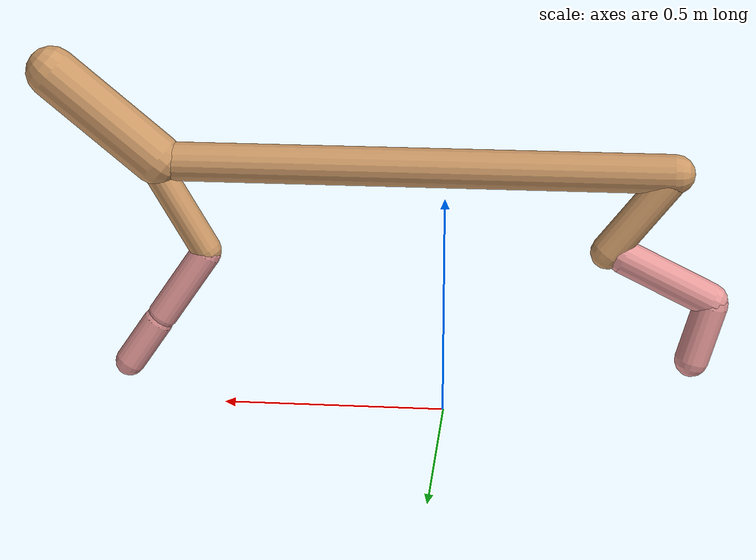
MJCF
<mujoco model="cheetah">
  <compiler angle="radian" coordinate="local" inertiafromgeom="true" settotalmass="14" />
  <default>
    <joint armature=".1" damping=".01" limited="true" solimplimit="0 .8 .03" solreflimit=".02 1" stiffness="8" />
    <geom conaffinity="0" condim="3" contype="1" friction="0.8 .1 .1" rgba="0.8 0.6 .4 1" solimp="0.0 0.8 0.01" solref="0.02 1" />
    <motor ctrllimited="true" ctrlrange="-1 1" />
  </default>
  <size nstack="300000" nuser_geom="1" />
  <option gravity="0 0 -9.81" timestep="0.01" />
  <worldbody>
    <body name="torso" pos="0.0 0.0 0.5713371636132277">
      <joint armature="0" axis="1 0 0" damping="0" limited="false" name="ignorex" pos="0 0 0" stiffness="0" type="slide" />
      <joint armature="0" axis="0 0 1" damping="0" limited="false" name="ignorez" pos="0 0 0" stiffness="0" type="slide" />
      <joint armature="0" axis="0 1 0" damping="0" limited="false" name="ignorey" pos="0 0 0" stiffness="0" type="hinge" />
      <geom fromto="-0.5 0.0 0.0 0.6527714941141858 0.0 0.0" name="torso" size="0.043414435591948776" type="capsule" />
      <geom axisangle="0 1 0 .87" name="head" pos="0.7527714941141858 0.0 0.1" size="0.057679649891887404 0.15" type="capsule" />

      <body name="bthigh" pos="-.5 0 0">
        <joint axis="0 1 0" damping="6" name="bthigh" pos="0 0 0" range="-.52 1.05" stiffness="240" type="hinge" />
        <geom axisangle="0 1 0 -3.8" name="bthigh" pos="0.07591347228806239 0.0 -0.0986875139744811" size="0.03840116503652521 0.10549515728019845" type="capsule" />
        <body name="bshin" pos="0.11182694457612476 0.0 -0.1873750279489622">
          <joint axis="0 1 0" damping="4.5" name="bshin" pos="0 0 0" range="-.785 .785" stiffness="180" type="hinge" />
          <geom axisangle="0 1 0 -2.03" name="bshin" pos="-0.10344737361575979 0.0 -0.05172368680787989" rgba="0.9 0.6 0.6 1" size="0.03840116503652521 0.10913292132434323" type="capsule" />
          <body name="bfoot" pos="-0.20689474723151957 0.0 -0.10344737361575979">
            <joint axis="0 1 0" damping="3" name="bfoot" pos="0 0 0" range="-.4 .785" stiffness="120" type="hinge" />
            <geom axisangle="0 1 0 -.27" name="bfoot" pos="0.0224330097678968 0.0 -0.07253339824953299" rgba="0.9 0.6 0.6 1" size="0.03840116503652521 0.06838996402992176" type="capsule" />
            <inertial mass="10" />
          </body>
        </body>
      </body>
      <body name="fthigh" pos="0.6527714941141858 0.0 0.0">
        <joint axis="0 1 0" damping="4.5" name="fthigh" pos="0 0 0" range="-1.5 0.8" stiffness="180" type="hinge" />
        <geom axisangle="0 1 0 .52" name="fthigh" pos="-0.06098083659292218 0.0 -0.104538577016438" size="0.03417839278499637 0.11510025393363944" type="capsule" />
        <body name="fshin" pos="-0.12196167318584436 0.0 -0.209077154032876">
          <joint axis="0 1 0" damping="3" name="fshin" pos="0 0 0" range="-1.2 1.1" stiffness="120" type="hinge" />
          <geom axisangle="0 1 0 -.6" name="fshin" pos="0.05664741340424749 0.0 -0.07843488009818883" rgba="0.9 0.6 0.6 1" size="0.03417839278499637 0.09173403696966752" type="capsule" />
          <body name="ffoot" pos="0.11329482680849498 0.0 -0.15686976019637766">
            <joint axis="0 1 0" damping="1.5" name="ffoot" pos="0 0 0" range="-3.1 -0.3" stiffness="60" type="hinge" />
            <geom axisangle="0 1 0 -.6" name="ffoot" pos="0.039905566543174516 0.0 -0.062075325733827035" rgba="0.9 0.6 0.6 1" size="0.03417839278499637 0.06057908101770497" type="capsule" />
            <inertial mass="10" />
          </body>
        </body>
      </body>
    </body>
  </worldbody>
  <actuator>
    <motor gear="120" joint="bthigh" name="bthigh" />
    <motor gear="90" joint="bshin" name="bshin" />
    <motor gear="60" joint="bfoot" name="bfoot" />
    <motor gear="120" joint="fthigh" name="fthigh" />
    <motor gear="60" joint="fshin" name="fshin" />
    <motor gear="30" joint="ffoot" name="ffoot" />
  </actuator>
</mujoco>
